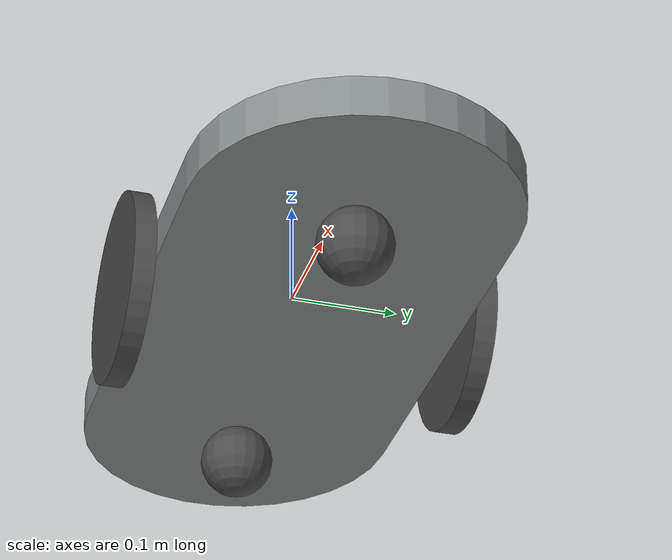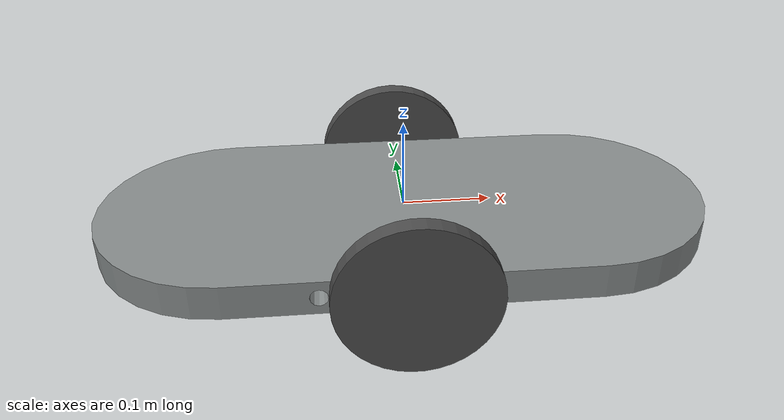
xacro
<?xml version="1.0" ?>
<robot name="diffbot" xmlns:xacro="http://ros.org/wiki/xacro">

  <xacro:include filename="$(find diffbot)/urdf/diffbot_full_gazebo.xacro" />

  <link name="base_footprint" />

  <joint name="base_link__base_footprint" type="fixed">
    <parent link="base_footprint"/>
    <child link="base_link"/>
    <origin xyz="0.0 0.0 0.003" rpy="0 0 0"/>
  </joint>
  <link
    name="base_link">
    <inertial>
      <origin
        xyz="0 0 -0.02"
        rpy="0 0 0" />
      <mass
        value="7.53318560862312" />
      <inertia
        ixx="0.0522120893856812"
        ixy="3.93072586580907E-17"
        ixz="9.63358805343892E-19"
        iyy="0.266013927067481"
        iyz="3.19552439912169E-19"
        izz="0.316196746605281" />
    </inertial>
    <visual>
      <origin
        xyz="0 0 0"
        rpy="0 0 0" />
      <geometry>
        <mesh
          filename="package://diffbot/meshes/base_link.STL" />
      </geometry>
      <material
        name="">
        <color
          rgba="0.529411764705882 0.549019607843137 0.549019607843137 1" />
      </material>
    </visual>
    <collision>
      <origin
        xyz="0 0 0"
        rpy="0 0 0" />
      <geometry>
        <mesh
          filename="package://diffbot/meshes/base_link.STL" />
      </geometry>
    </collision>
  </link>
  <link
    name="linkleft">
    <inertial>
      <origin
        xyz="0 -0.0110479041916167 -6.93889390390723E-18"
        rpy="0 0 0" />
      <mass
        value="0.524645973149496" />
      <inertia
        ixx="0.00106989540135268"
        ixy="1.70980652360271E-19"
        ixz="-3.55148617365289E-19"
        iyy="0.00206198433818366"
        iyz="8.4191566505545E-21"
        izz="0.00106989540135268" />
    </inertial>
    <visual>
      <origin
        xyz="0 0 0"
        rpy="0 0 0" />
      <geometry>
        <mesh
          filename="package://diffbot/meshes/linkleft.STL" />
      </geometry>
      <material
        name="">
        <color
          rgba="0.298039215686275 0.298039215686275 0.298039215686275 1" />
      </material>
    </visual>
    <collision>
      <origin
        xyz="0 0 0"
        rpy="0 0 0" />
      <geometry>
        <mesh
          filename="package://diffbot/meshes/linkleft.STL" />
      </geometry>
    </collision>
  </link>
  <joint
    name="jointleft"
    type="continuous">
    <origin
      xyz="0 0.17 -0.02"
      rpy="0 0 0" />
    <parent
      link="base_link" />
    <child
      link="linkleft" />
    <axis
      xyz="0 -1 0" />
    <limit
      effort="1"
      velocity="1" />
  </joint>
  <link
    name="linkright">
    <inertial>
      <origin
        xyz="0 0.0110479041916167 0"
        rpy="0 0 0" />
      <mass
        value="0.524645973149496" />
      <inertia
        ixx="0.00106989540135268"
        ixy="1.40080394602118E-19"
        ixz="1.07540887217111E-35"
        iyy="0.00206198433818366"
        iyz="-5.87747175411144E-36"
        izz="0.00106989540135268" />
    </inertial>
    <visual>
      <origin
        xyz="0 0 0"
        rpy="0 0 0" />
      <geometry>
        <mesh
          filename="package://diffbot/meshes/linkright.STL" />
      </geometry>
      <material
        name="">
        <color
          rgba="0.298039215686275 0.298039215686275 0.298039215686275 1" />
      </material>
    </visual>
    <collision>
      <origin
        xyz="0 0 0"
        rpy="0 0 0" />
      <geometry>
        <mesh
          filename="package://diffbot/meshes/linkright.STL" />
      </geometry>
    </collision>
  </link>
  <joint
    name="jointright"
    type="continuous">
    <origin
      xyz="0 -0.17 -0.02"
      rpy="0 0 0" />
    <parent
      link="base_link" />
    <child
      link="linkright" />
    <axis
      xyz="0 -1 0" />
    <limit
      effort="1"
      velocity="1" />
  </joint>

  <link name="fcastor_wheel">
    <origin rpy="0 0 0" xyz="0.00 0 0.00"/>
    <visual>
      <geometry>
        <sphere radius="0.035"/>
      </geometry>
      <material
        name="">
        <color
          rgba="0.29804 0.29804 0.29804 1" />
      </material>
    </visual>
    <collision>
      <geometry>
        <sphere radius="0.035"/>
      </geometry>
    </collision>
    <inertial>
      <origin xyz="0 0 0" />
      <mass value="0.002" />
      <inertia ixx="0.0001" ixy="0.0" ixz="0.0" iyy="0.0001" iyz="0.0" izz="0.0001" />
    </inertial>
  </link>

  <joint name="base_link__fcastor_wheel" type="continuous">
    <parent link="base_link"/>
    <child link="fcastor_wheel"/>
    <origin xyz="0.2 0 -0.070" rpy="0 0 0"/>
  </joint>

  <link name="bcastor_wheel">
    <origin rpy="0 0 0" xyz="0.00 0 0.00"/>
    <visual>
      <geometry>
        <sphere radius="0.035"/>
      </geometry>
      <material
        name="">
        <color
          rgba="0.29804 0.29804 0.29804 1" />
      </material>
    </visual>
    <collision>
      <geometry>
        <sphere radius="0.035"/>
      </geometry>
    </collision>
    <inertial>
      <origin xyz="0 0 0" />
      <mass value="0.002" />
      <inertia ixx="0.0001" ixy="0.0" ixz="0.0" iyy="0.0001" iyz="0.0" izz="0.0001" />
    </inertial>
  </link>

  <joint name="base_link__bcastor_wheel" type="continuous">
    <parent link="base_link"/>
    <child link="bcastor_wheel"/>
    <origin xyz="-0.2 0 -0.070" rpy="0 0 0"/>
  </joint>
</robot>
